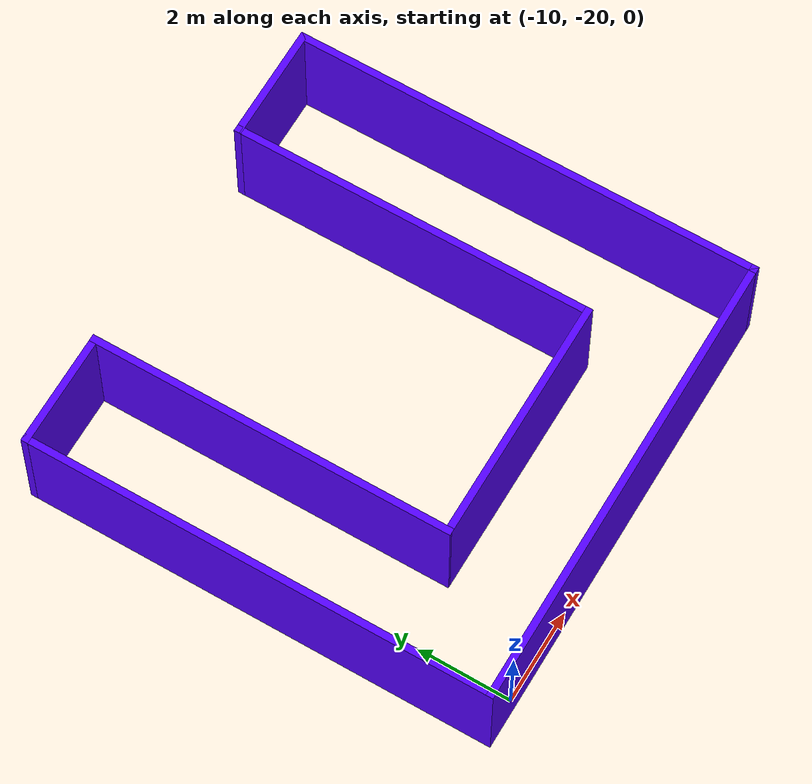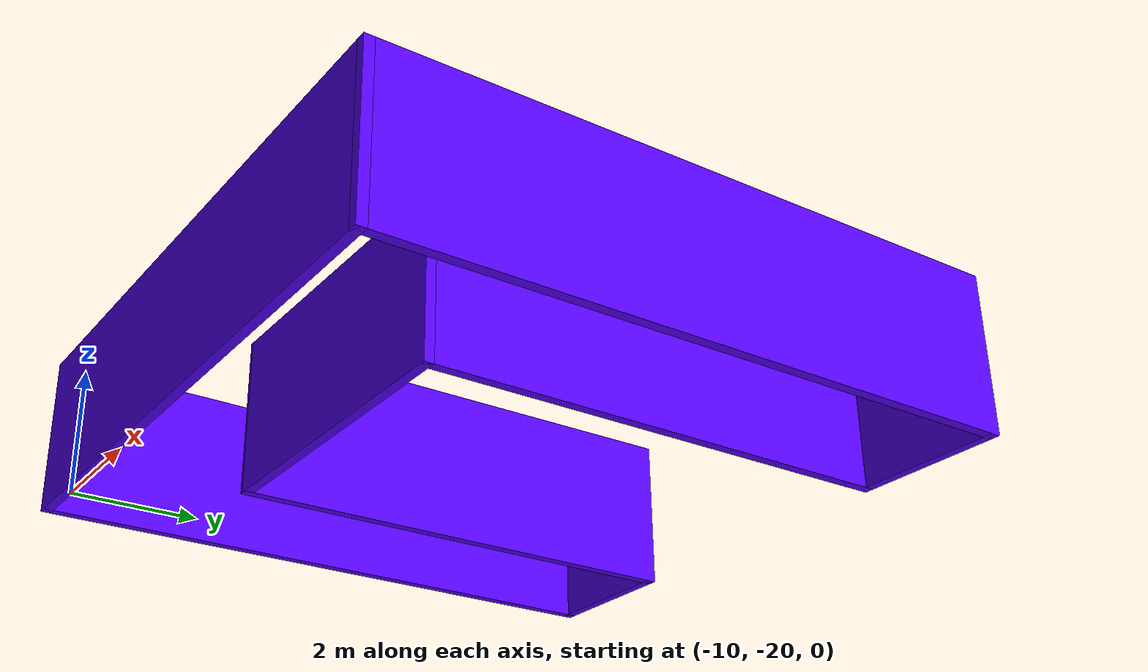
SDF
<?xml version='1.0'?>
<sdf version='1.6'>
  <model name='u-shaped-model'>
    <pose frame=''>-5.99612 -15.1296 0 0 -0 0</pose>
    <link name='Wall_15'>
      <collision name='Wall_15_Collision'>
        <geometry>
          <box>
            <size>10 0.15 2.5</size>
          </box>
        </geometry>
        <pose frame=''>0 0 1.25 0 -0 0</pose>
      </collision>
      <visual name='Wall_15_Visual'>
        <pose frame=''>0 0 1.25 0 -0 0</pose>
        <geometry>
          <box>
            <size>10 0.15 2.5</size>
          </box>
        </geometry>
        <material>
          <script>
            <uri>file://media/materials/scripts/gazebo.material</uri>
            <name>Gazebo/Grey</name>
          </script>
          <ambient>0.333333 0 1 1</ambient>
        </material>
      </visual>
      <pose frame=''>-4.92512 0.000124 0 0 0 -1.5708</pose>
    </link>
    <link name='Wall_17'>
      <collision name='Wall_17_Collision'>
        <geometry>
          <box>
            <size>10 0.15 2.5</size>
          </box>
        </geometry>
        <pose frame=''>0 0 1.25 0 -0 0</pose>
      </collision>
      <visual name='Wall_17_Visual'>
        <pose frame=''>0 0 1.25 0 -0 0</pose>
        <geometry>
          <box>
            <size>10 0.15 2.5</size>
          </box>
        </geometry>
        <material>
          <script>
            <uri>file://media/materials/scripts/gazebo.material</uri>
            <name>Gazebo/Grey</name>
          </script>
          <ambient>0.333333 0 1 1</ambient>
        </material>
      </visual>
      <pose frame=''>-0.000124 -4.92488 0 0 -0 0</pose>
    </link>
    <link name='Wall_19'>
      <collision name='Wall_19_Collision'>
        <geometry>
          <box>
            <size>10 0.15 2.5</size>
          </box>
        </geometry>
        <pose frame=''>0 0 1.25 0 -0 0</pose>
      </collision>
      <visual name='Wall_19_Visual'>
        <pose frame=''>0 0 1.25 0 -0 0</pose>
        <geometry>
          <box>
            <size>10 0.15 2.5</size>
          </box>
        </geometry>
        <material>
          <script>
            <uri>file://media/materials/scripts/gazebo.material</uri>
            <name>Gazebo/Grey</name>
          </script>
          <ambient>0.333333 0 1 1</ambient>
        </material>
      </visual>
      <pose frame=''>4.925 -0.000122 0 0 -0 1.57077</pose>
    </link>
    <link name='Wall_21'>
      <collision name='Wall_21_Collision'>
        <geometry>
          <box>
            <size>2.5 0.15 2.5</size>
          </box>
        </geometry>
        <pose frame=''>0 0 1.25 0 -0 0</pose>
      </collision>
      <visual name='Wall_21_Visual'>
        <pose frame=''>0 0 1.25 0 -0 0</pose>
        <geometry>
          <box>
            <size>2.5 0.15 2.5</size>
          </box>
        </geometry>
        <material>
          <script>
            <uri>file://media/materials/scripts/gazebo.material</uri>
            <name>Gazebo/Grey</name>
          </script>
          <ambient>0.333333 0 1 1</ambient>
        </material>
      </visual>
      <pose frame=''>-3.75012 4.92512 0 0 -0 0</pose>
    </link>
    <link name='Wall_23'>
      <collision name='Wall_23_Collision'>
        <geometry>
          <box>
            <size>2.5 0.15 2.5</size>
          </box>
        </geometry>
        <pose frame=''>0 0 1.25 0 -0 0</pose>
      </collision>
      <visual name='Wall_23_Visual'>
        <pose frame=''>0 0 1.25 0 -0 0</pose>
        <geometry>
          <box>
            <size>2.5 0.15 2.5</size>
          </box>
        </geometry>
        <material>
          <script>
            <uri>file://media/materials/scripts/gazebo.material</uri>
            <name>Gazebo/Grey</name>
          </script>
          <ambient>0.333333 0 1 1</ambient>
        </material>
      </visual>
      <pose frame=''>3.75012 4.92463 0 0 -0 3.14159</pose>
    </link>
    <link name='Wall_25'>
      <collision name='Wall_25_Collision'>
        <geometry>
          <box>
            <size>7.75 0.15 2.5</size>
          </box>
        </geometry>
        <pose frame=''>0 0 1.25 0 -0 0</pose>
      </collision>
      <visual name='Wall_25_Visual'>
        <pose frame=''>0 0 1.25 0 -0 0</pose>
        <geometry>
          <box>
            <size>7.75 0.15 2.5</size>
          </box>
        </geometry>
        <material>
          <script>
            <uri>file://media/materials/scripts/gazebo.material</uri>
            <name>Gazebo/Grey</name>
          </script>
          <ambient>0.333333 0 1 1</ambient>
        </material>
      </visual>
      <pose frame=''>-2.57512 1.12512 0 0 0 -1.5708</pose>
    </link>
    <link name='Wall_27'>
      <collision name='Wall_27_Collision'>
        <geometry>
          <box>
            <size>7.75 0.15 2.5</size>
          </box>
        </geometry>
        <pose frame=''>0 0 1.25 0 -0 0</pose>
      </collision>
      <visual name='Wall_27_Visual'>
        <pose frame=''>0 0 1.25 0 -0 0</pose>
        <geometry>
          <box>
            <size>7.75 0.15 2.5</size>
          </box>
        </geometry>
        <material>
          <script>
            <uri>file://media/materials/scripts/gazebo.material</uri>
            <name>Gazebo/Grey</name>
          </script>
          <ambient>0.333333 0 1 1</ambient>
        </material>
      </visual>
      <pose frame=''>2.57512 1.12463 0 0 0 -1.5708</pose>
    </link>
    <link name='Wall_28'>
      <collision name='Wall_28_Collision'>
        <geometry>
          <box>
            <size>5.25 0.15 2.5</size>
          </box>
        </geometry>
        <pose frame=''>0 0 1.25 0 -0 0</pose>
      </collision>
      <visual name='Wall_28_Visual'>
        <pose frame=''>0 0 1.25 0 -0 0</pose>
        <geometry>
          <box>
            <size>5.25 0.15 2.5</size>
          </box>
        </geometry>
        <material>
          <script>
            <uri>file://media/materials/scripts/gazebo.material</uri>
            <name>Gazebo/Grey</name>
          </script>
          <ambient>0.333333 0 1 1</ambient>
        </material>
      </visual>
      <pose frame=''>0.025123 -2.67537 0 0 -0 3.14159</pose>
    </link>
    <static>1</static>
  </model>
</sdf>
